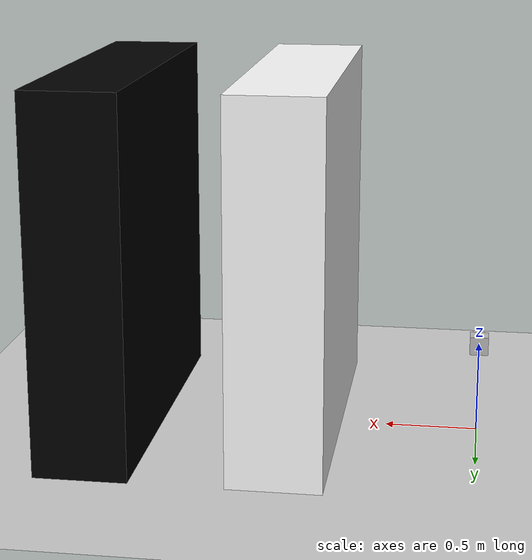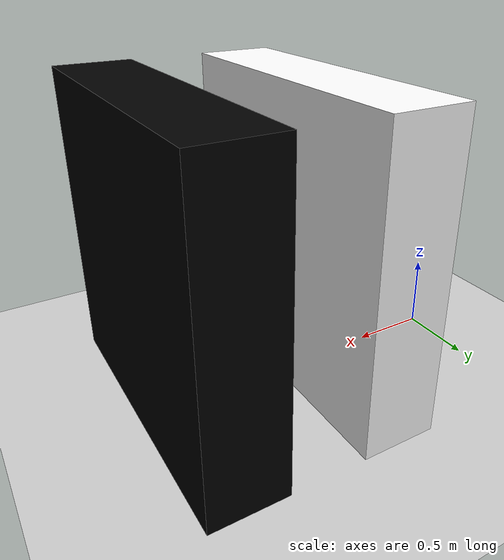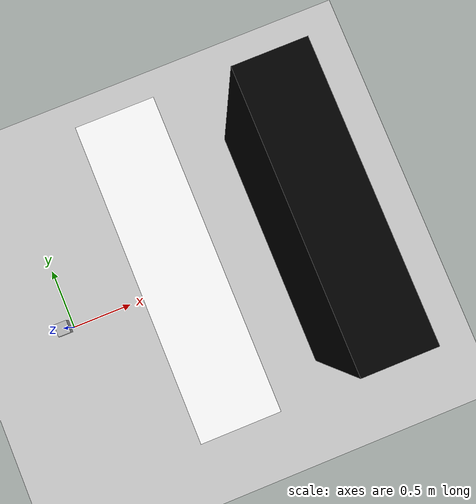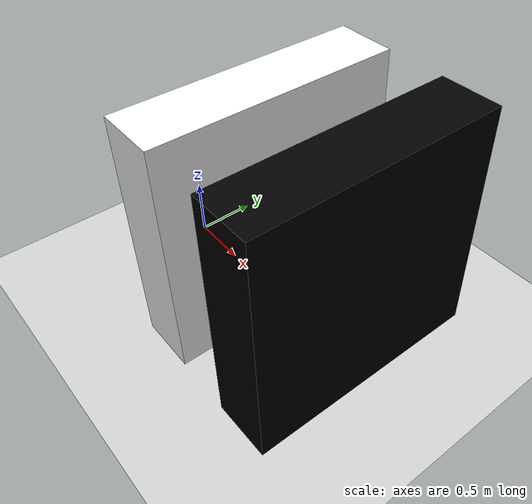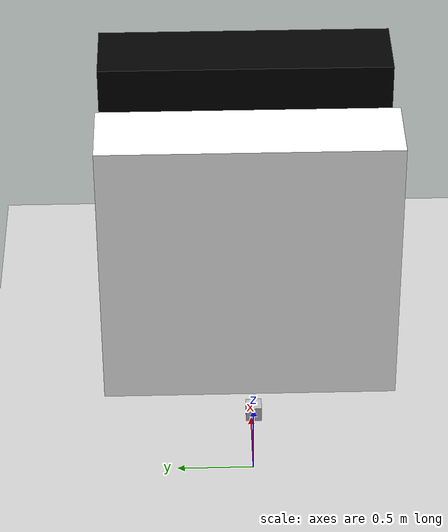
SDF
<?xml version="1.0" encoding="UTF-8" ?>
<sdf version='1.6'>
  <world name='default'>
    <include>
      <uri>model://ground_plane</uri>
    </include>

    <model name="camera">
      <pose>0 0 0.5 0 0 0</pose>
      <static>true</static>
      <link name="link">
        <collision name="collision">
          <geometry>
            <box>
              <size>0.1 0.1 0.1</size>
            </box>
          </geometry>
        </collision>
        <visual name="visual">
          <geometry>
            <box>
              <size>0.1 0.1 0.1</size>
            </box>
          </geometry>
        </visual>
        <sensor name="camera" type="camera">
          <camera>
            <horizontal_fov>1.047</horizontal_fov>
            <image>
              <width>10</width>
              <height>10</height>
            </image>
            <clip>
              <near>0.1</near>
              <far>100</far>
            </clip>
          </camera>
          <always_on>1</always_on>
          <update_rate>10</update_rate>
          <visualize>false</visualize>
        </sensor>
      </link>
    </model>

    <model name='wall'>
      <static>1</static>
      <pose>2 0 0 0 0 0</pose>
      <link name='link'>
        <pose>0 0 1 0 0 0</pose>
        <visual name='visual'>
          <geometry>
            <box>
              <size>0.5 2 2</size>
            </box>
          </geometry>
          <material>
            <ambient>0 0 0 1</ambient>
            <diffuse>0 0 0 1</diffuse>
            <specular>0 0 0 1</specular>
            <emissive>0 0 0 1</emissive>
          </material>
        </visual>
      </link>
    </model>

    <model name='light_model'>
      <static>1</static>
      <pose>1 0 0 0 0 0</pose>
      <link name='light_source'>
        <pose>0 0 1 0 0 0</pose>
        <light name='lamp' type='point'>
          <attenuation>
            <range>5</range>
            <linear>0.05</linear>
          </attenuation>
          <diffuse>1 1 1 1</diffuse>
          <specular>1 1 1 1</specular>
        </light>
        <visual name='lamp'>
          <geometry>
            <box>
              <size>0.5 2 2</size>
            </box>
          </geometry>
          <transparency>0</transparency>
          <material>
            <ambient>1 1 1 1</ambient>
            <diffuse>1 1 1 1</diffuse>
            <specular>1 1 1 1</specular>
            <emissive>1 1 1 1</emissive>
          </material>
        </visual>
      </link>
      <plugin name='light_control' filename='libRosFlashLightPlugin.so'>
        <service_name>light_switch</service_name>
        <enable>true</enable>
        <light>
          <id>light_source/lamp</id>
          <block>
            <duration>0.8</duration>
            <interval>0.6</interval>
          </block>
          <enable>true</enable>
        </light>
      </plugin>
    </model>
    <gravity>0 0 -9.8</gravity>
  </world>
</sdf>
